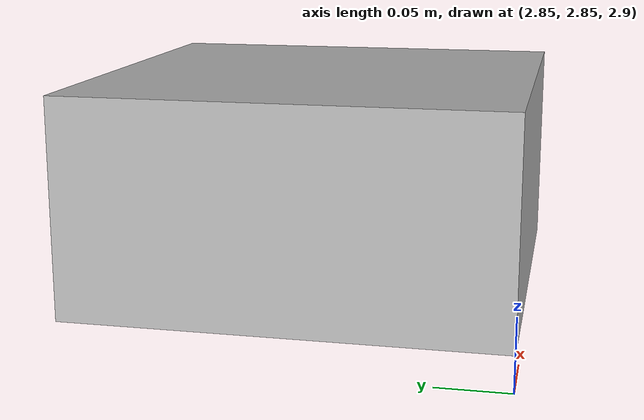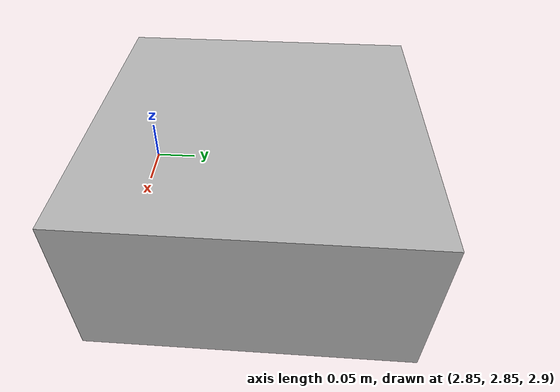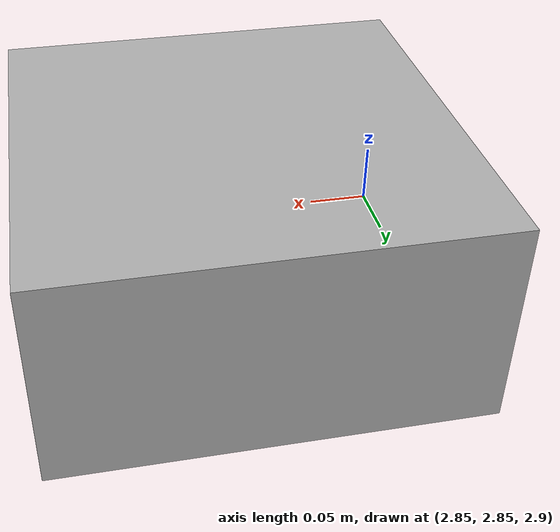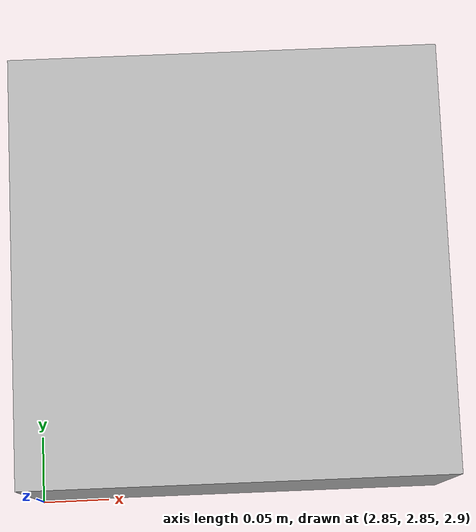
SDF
<?xml version='1.0'?>
<sdf version='1.4'>
<model name='sjtu_drone'>
   <!-- model plugins should be put in the front of the sensor plugins!
	This might be a bug~
	-->
    <plugin name='simple_drone' filename='libplugin_drone.so'>
        <bodyName>base_link</bodyName>
        <imuTopic>/drone/imu</imuTopic>
        <rollpitchProportionalGain>10.0</rollpitchProportionalGain>
        <rollpitchDifferentialGain>5.0</rollpitchDifferentialGain>
        <rollpitchLimit>0.5</rollpitchLimit>
        <yawProportionalGain>2.0</yawProportionalGain>
        <yawDifferentialGain>1.0</yawDifferentialGain>
        <yawLimit>1.5</yawLimit>
        <velocityXYProportionalGain>5.0</velocityXYProportionalGain>
        <velocityXYDifferentialGain>2.3</velocityXYDifferentialGain>
        <velocityXYLimit>2</velocityXYLimit>
        <velocityZProportionalGain>5.0</velocityZProportionalGain>
        <velocityZDifferentialGain>1.0</velocityZDifferentialGain>
        <velocityZLimit>-1</velocityZLimit>
        <positionXYProportionalGain>1.1</positionXYProportionalGain>
        <positionXYDifferentialGain>0.0</positionXYDifferentialGain>
        <positionXYIntegralGain>0.0</positionXYIntegralGain>
        <positionXYLimit>5</positionXYLimit>
        <positionZProportionalGain>1.0</positionZProportionalGain>
        <positionZDifferentialGain>0.2</positionZDifferentialGain>
        <positionZLimit>-1</positionZLimit>
        <maxForce>30</maxForce>
        <motionSmallNoise>0.05</motionSmallNoise>
        <motionDriftNoise>0.03</motionDriftNoise>
        <motionDriftNoiseTime>5.0</motionDriftNoiseTime>
    </plugin>

     <!-- pose of the quadrotor in the world frame -->
     <pose>3 3 3 0 0 0</pose>
      <link name='base_link'>
      <inertial>
        <mass>1.477</mass>
	<pose>0 0 0 0 0 0</pose>
	<inertia>
	<ixx>0.1152</ixx>
	<ixy>0</ixy>
	<ixz>0</ixz>
	<iyy>0.1152</iyy>
	<iyz>0</iyz>
	<izz>0.218</izz>

	</inertia>
      </inertial>

      <visual name='visual'>
        <geometry>
          <box>
            <size>0.3 0.3 0.15</size>
          </box>
        </geometry>
      </visual>

      <collision name='collision'>
        <geometry>
          <box>
            <size>0.3 0.3 0.15</size>
          </box>
        </geometry>
        <surface>
            <bounce><restitution_coefficient>0</restitution_coefficient></bounce>
		</surface>
      </collision>

      <gravity>1</gravity>

     <!-- IMU sensor in 100fps -->
	<sensor name='sensor_imu' type='imu'>
	<always_on> 1 </always_on>
	<update_rate> 100 </update_rate>
	<pose> 0 0 0 0 0 0 </pose>
	<plugin name='ros_imu' filename='libplugin_ros_imu.so'>
	</plugin>
	<imu>
		<noise>
		    <type>gaussian</type>
			<rate>
				<mean> 0 </mean>
				<stddev> 0 </stddev>
			</rate>
			<accel>
				<mean> 0 </mean>
				<stddev> 0.00 </stddev>
			</accel>
		</noise>
	</imu>
	</sensor>

	<sensor name='sensor_sonar' type='sonar'>
	<always_on>1</always_on>
	<visualize>0</visualize>
	<update_rate>100</update_rate>
	<pose> 0.5 0 0.3 0 1.570796327 3.141592653 </pose>
	<plugin name='ros_sonar' filename='libplugin_ros_sonar.so'>
	</plugin>
	<sonar>
		<min>0</min>
		<max>5</max>
        	<radius>1.33974596</radius>
        </sonar>
        </sensor>
	<sensor name="down_camera" type="camera">
        <camera>
          <horizontal_fov>1.047</horizontal_fov>
          <image>
            <width>640</width>
            <height>360</height>
            <format>R8G8B8</format>
          </image>
          <clip>
            <near>0.1</near>
            <far>100</far>
          </clip>
          <noise>
            <type>gaussian</type>
            <mean>0.0</mean>
            <stddev>0.005</stddev>
          </noise>
        </camera>
	<pose> 0.0 0.0 0.0 0 1.570796326794897 0 </pose>
        <always_on>1</always_on>
        <update_rate>15</update_rate>
        <visualize>true</visualize>
	<plugin name='down_camera' filename='libplugin_ros_cam.so'>
	<imageTopicName>/drone/down_camera/image_raw</imageTopicName>
	</plugin>
      </sensor>

     </link>
</model>
</sdf>
